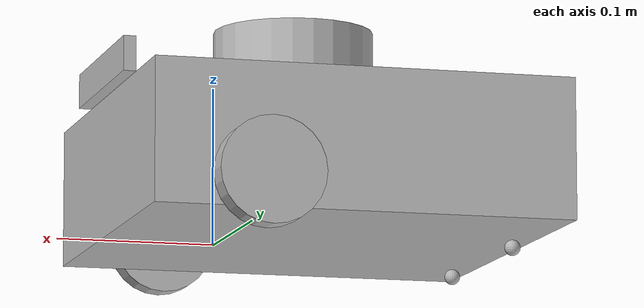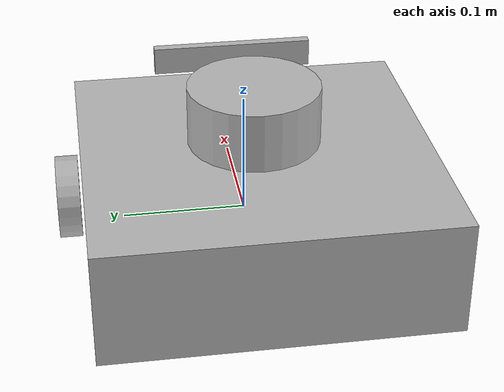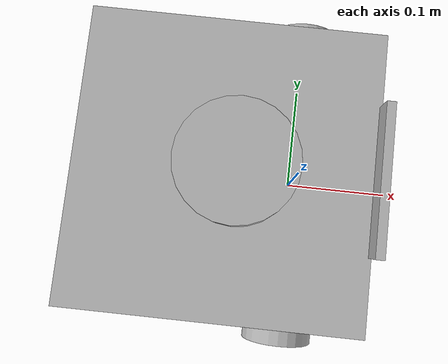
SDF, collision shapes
<?xml version="1.0"?>
<sdf version='1.6'>
  <model name="robot">

    <pose>0.0 0.0 0.0 0.0 0.0 0.0</pose>

    <link name="base_footprint"/>

    <link name="base_link">

      <inertial>
        <pose>-0.064 0 0.048 0 0 0</pose>
        <inertia>
          <ixx>0.001</ixx>
          <ixy>0.000</ixy>
          <ixz>0.000</ixz>
          <iyy>0.001</iyy>
          <iyz>0.000</iyz>
          <izz>0.001</izz>
        </inertia>
        <mass>1.0</mass>
      </inertial>

      <collision name="base_collision">
        <pose>-0.064 0 0.048 0 0 0</pose>
        <geometry>
          <box>
            <size>0.265 0.265 0.089</size>
          </box>
        </geometry>
      </collision>

      <visual name="base_visual">
        <pose>-0.064 0 0 0 0 0</pose>
        <geometry>
          <mesh>
            <uri>model://turtlebot3_waffle/meshes/waffle_base.dae</uri>
            <scale>0.001 0.001 0.001</scale>
          </mesh>
        </geometry>
      </visual>
    </link>

    <link name="imu_link">
      <sensor name="tb3_imu" type="imu">
        <always_on>true</always_on>
        <update_rate>200</update_rate>
        <imu>
          <angular_velocity>
            <x>
              <noise type="gaussian">
                <mean>0.0</mean>
                <stddev>2e-4</stddev>
              </noise>
            </x>
            <y>
              <noise type="gaussian">
                <mean>0.0</mean>
                <stddev>2e-4</stddev>
              </noise>
            </y>
            <z>
              <noise type="gaussian">
                <mean>0.0</mean>
                <stddev>2e-4</stddev>
              </noise>
            </z>
          </angular_velocity>
          <linear_acceleration>
            <x>
              <noise type="gaussian">
                <mean>0.0</mean>
                <stddev>1.7e-2</stddev>
              </noise>
            </x>
            <y>
              <noise type="gaussian">
                <mean>0.0</mean>
                <stddev>1.7e-2</stddev>
              </noise>
            </y>
            <z>
              <noise type="gaussian">
                <mean>0.0</mean>
                <stddev>1.7e-2</stddev>
              </noise>
            </z>
          </linear_acceleration>
        </imu>
        <plugin name="turtlebot3_imu" filename="libgazebo_ros_imu_sensor.so">
          <ros>
            <argument>--ros-args</argument>
            <argument>-r</argument>
            <argument>~/out:=imu</argument>
          </ros>
        </plugin>
      </sensor>
    </link>

    <link name="base_scan">
      <inertial>
        <pose>-0.052 0 0.111 0 0 0</pose>
        <inertia>
          <ixx>0.001</ixx>
          <ixy>0.000</ixy>
          <ixz>0.000</ixz>
          <iyy>0.001</iyy>
          <iyz>0.000</iyz>
          <izz>0.001</izz>
        </inertia>
        <mass>0.125</mass>
      </inertial>

      <collision name="lidar_sensor_collision">
        <pose>-0.052 0 0.111 0 0 0</pose>
        <geometry>
          <cylinder>
            <radius>0.0508</radius>
            <length>0.055</length>
          </cylinder>
        </geometry>
      </collision>

      <visual name="lidar_sensor_visual">
        <pose>-0.064 0 0.121 0 0 0</pose>
        <geometry>
          <mesh>
            <uri>model://turtlebot3_waffle/meshes/lds.dae</uri>
            <scale>0.001 0.001 0.001</scale>
          </mesh>
        </geometry>
      </visual>

      <sensor name="lidar_sensor" type="ray">
        <always_on>true</always_on>
        <visualize>true</visualize>
        <pose>-0.064 0 0.121 0 0 0</pose>
        <update_rate>5</update_rate>
        <ray>
          <scan>
            <horizontal>
              <samples>360</samples>
              <resolution>1.000000</resolution>
              <min_angle>-3.14</min_angle>
              <max_angle>3.14</max_angle>
            </horizontal>
          </scan>
          <range>
            <min>0.120000</min>
            <max>3.5</max>
            <resolution>0.015000</resolution>
          </range>
          <noise>
            <type>gaussian</type>
            <mean>0.0</mean>
            <stddev>0.01</stddev>
          </noise>
        </ray>
        <plugin name="turtlebot3_laserscan_realistic" filename="libgazebo_ros_ray_sensor.so">
          <ros>
              <argument>--ros-args</argument>
              <argument>-r </argument>
              <argument>~/out:=scan</argument>
          </ros>
          <output_type>sensor_msgs/LaserScan</output_type>
          <frame_name>base_scan</frame_name>
        </plugin>
      </sensor>

      <sensor name="lidar_sensor_gt" type="ray">
        <always_on>true</always_on>
        <visualize>true</visualize>
        <pose>-0.064 0 0.121 0 0 0</pose>
        <update_rate>5</update_rate>
        <ray>
          <scan>
            <horizontal>
              <samples>360</samples>
              <resolution>1.000000</resolution>
              <min_angle>-3.14</min_angle>
              <max_angle>3.14</max_angle>
            </horizontal>
          </scan>
          <range>
            <min>0.120000</min>
            <max>60.0</max>
            <resolution>0.015000</resolution>
          </range>
        </ray>
        <plugin name="turtlebot3_laserscan_gt" filename="libgazebo_ros_ray_sensor.so">
          <ros>
              <argument>--ros-args</argument>
              <argument>-r </argument>
              <argument>~/out:=scan_gt</argument>
          </ros>
          <output_type>sensor_msgs/LaserScan</output_type>
          <frame_name>base_scan_gt</frame_name>
        </plugin>
      </sensor>

    </link>

    <link name="wheel_left_link">

      <inertial>
        <pose>0.0 0.144 0.023 -1.57 0 0</pose>
        <inertia>
          <ixx>0.001</ixx>
          <ixy>0.000</ixy>
          <ixz>0.000</ixz>
          <iyy>0.001</iyy>
          <iyz>0.000</iyz>
          <izz>0.001</izz>
        </inertia>
        <mass>0.1</mass>
      </inertial>

      <collision name="wheel_left_collision">
        <pose>0.0 0.144 0.023 -1.57 0 0</pose>
        <geometry>
          <cylinder>
            <radius>0.033</radius>
            <length>0.018</length>
          </cylinder>
        </geometry>
        <surface>
          <!-- This friction parameter doesn't contain reliable data!! -->
          <friction>
            <ode>
              <mu>100000.0</mu>
              <mu2>100000.0</mu2>
              <fdir1>0 0 0</fdir1>
              <slip1>0.0</slip1>
              <slip2>0.0</slip2>
            </ode>
          </friction>
          <contact>
            <ode>
              <soft_cfm>0</soft_cfm>
              <soft_erp>0.2</soft_erp>
              <kp>1e+5</kp>
              <kd>1</kd>
              <max_vel>0.01</max_vel>
              <min_depth>0.001</min_depth>
            </ode>
          </contact>
        </surface>
      </collision>

      <visual name="wheel_left_visual">
        <pose>0.0 0.144 0.023 0 0 0</pose>
        <geometry>
          <mesh>
            <uri>model://turtlebot3_waffle/meshes/left_tire.dae</uri>
            <scale>0.001 0.001 0.001</scale>
          </mesh>
        </geometry>
      </visual>
    </link>

    <link name="wheel_right_link">

      <inertial>
        <pose>0.0 -0.144 0.023 -1.57 0 0</pose>
        <inertia>
          <ixx>0.001</ixx>
          <ixy>0.000</ixy>
          <ixz>0.000</ixz>
          <iyy>0.001</iyy>
          <iyz>0.000</iyz>
          <izz>0.001</izz>
        </inertia>
        <mass>0.1</mass>
      </inertial>

      <collision name="wheel_right_collision">
        <pose>0.0 -0.144 0.023 -1.57 0 0</pose>
        <geometry>
          <cylinder>
            <radius>0.033</radius>
            <length>0.018</length>
          </cylinder>
        </geometry>
        <surface>
          <!-- This friction parameter doesn't contain reliable data!! -->
          <friction>
            <ode>
              <mu>100000.0</mu>
              <mu2>100000.0</mu2>
              <fdir1>0 0 0</fdir1>
              <slip1>0.0</slip1>
              <slip2>0.0</slip2>
            </ode>
          </friction>
          <contact>
            <ode>
              <soft_cfm>0</soft_cfm>
              <soft_erp>0.2</soft_erp>
              <kp>1e+5</kp>
              <kd>1</kd>
              <max_vel>0.01</max_vel>
              <min_depth>0.001</min_depth>
            </ode>
          </contact>
        </surface>
      </collision>

      <visual name="wheel_right_visual">
        <pose>0.0 -0.144 0.023 0 0 0</pose>
        <geometry>
          <mesh>
            <uri>model://turtlebot3_waffle/meshes/right_tire.dae</uri>
            <scale>0.001 0.001 0.001</scale>
          </mesh>
        </geometry>
      </visual>
    </link>

    <link name='caster_back_right_link'>
      <pose>-0.177 -0.064 -0.004 0 0 0</pose>
      <inertial>
        <mass>0.001</mass>
        <inertia>
          <ixx>0.00001</ixx>
          <ixy>0.000</ixy>
          <ixz>0.000</ixz>
          <iyy>0.00001</iyy>
          <iyz>0.000</iyz>
          <izz>0.00001</izz>
        </inertia>
      </inertial>
      <collision name='collision'>
        <geometry>
          <sphere>
            <radius>0.005000</radius>
          </sphere>
        </geometry>
        <surface>
          <contact>
            <ode>
              <soft_cfm>0</soft_cfm>
              <soft_erp>0.2</soft_erp>
              <kp>1e+5</kp>
              <kd>1</kd>
              <max_vel>0.01</max_vel>
              <min_depth>0.001</min_depth>
            </ode>
          </contact>
        </surface>
      </collision>
    </link>

    <link name='caster_back_left_link'>
      <pose>-0.177 0.064 -0.004 0 0 0</pose>
      <inertial>
        <mass>0.001</mass>
        <inertia>
          <ixx>0.00001</ixx>
          <ixy>0.000</ixy>
          <ixz>0.000</ixz>
          <iyy>0.00001</iyy>
          <iyz>0.000</iyz>
          <izz>0.00001</izz>
        </inertia>
      </inertial>
      <collision name='collision'>
        <geometry>
          <sphere>
            <radius>0.005000</radius>
          </sphere>
        </geometry>
        <surface>
          <contact>
            <ode>
              <soft_cfm>0</soft_cfm>
              <soft_erp>0.2</soft_erp>
              <kp>1e+5</kp>
              <kd>1</kd>
              <max_vel>0.01</max_vel>
              <min_depth>0.001</min_depth>
            </ode>
          </contact>
        </surface>
      </collision>
    </link>

    <link name="camera_link"/>

    <link name="camera_rgb_frame">
      <inertial>
        <pose>0.069 -0.047 0.107 0 0 0</pose>
        <inertia>
          <ixx>0.001</ixx>
          <ixy>0.000</ixy>
          <ixz>0.000</ixz>
          <iyy>0.001</iyy>
          <iyz>0.000</iyz>
          <izz>0.001</izz>
        </inertia>
        <mass>0.035</mass>
      </inertial>

      <collision name="collision">
        <pose>0 0.047 0 0 0 0</pose>
        <geometry>
          <box>
            <size>0.008 0.130 0.022</size>
          </box>
        </geometry>
      </collision>
      <pose>0.069 -0.047 0.107 0 0 0</pose>
      <sensor name="camera" type="camera">
        <always_on>true</always_on>
        <visualize>true</visualize>
        <update_rate>30</update_rate>
        <camera name="intel_realsense_r200">
          <horizontal_fov>1.02974</horizontal_fov>
          <image>
            <width>1920</width>
            <height>1080</height>
            <format>R8G8B8</format>
          </image>
          <clip>
            <near>0.02</near>
            <far>300</far>
          </clip>
          <noise>
            <type>gaussian</type>
            <mean>0.0</mean>
            <stddev>0.007</stddev>
          </noise>
        </camera>
          <plugin name="camera_driver" filename="libgazebo_ros_camera.so">
            <ros>
            </ros>
          </plugin>
      </sensor>
    </link>

    <joint name="base_joint" type="fixed">
      <parent>base_footprint</parent>
      <child>base_link</child>
      <pose>0.0 0.0 0.010 0 0 0</pose>
    </joint>

    <joint name="wheel_left_joint" type="revolute">
      <parent>base_link</parent>
      <child>wheel_left_link</child>
      <pose>0.0 0.144 0.023 -1.57 0 0</pose>
      <axis>
        <xyz>0 0 1</xyz>
      </axis>
    </joint>

    <joint name="wheel_right_joint" type="revolute">
      <parent>base_link</parent>
      <child>wheel_right_link</child>
      <pose>0.0 -0.144 0.023 -1.57 0 0</pose>
      <axis>
        <xyz>0 0 1</xyz>
      </axis>
    </joint>

    <joint name='caster_back_right_joint' type='ball'>
      <parent>base_link</parent>
      <child>caster_back_right_link</child>
    </joint>

    <joint name='caster_back_left_joint' type='ball'>
      <parent>base_link</parent>
      <child>caster_back_left_link</child>
    </joint>

    <joint name="lidar_joint" type="fixed">
      <parent>base_link</parent>
      <child>base_scan</child>
      <pose>-0.064 0 0.121 0 0 0</pose>
      <axis>
        <xyz>0 0 1</xyz>
      </axis>
    </joint>

    <joint name="camera_joint" type="fixed">
      <parent>base_link</parent>
      <child>camera_link</child>
      <pose>0.064 -0.065 0.094 0 0 0</pose>
      <axis>
        <xyz>0 0 1</xyz>
      </axis>
    </joint>

    <joint name="camera_rgb_joint" type="fixed">
      <parent>camera_link</parent>
      <child>camera_rgb_frame</child>
      <pose>0.005 0.018 0.013 0 0 0</pose>
      <axis>
        <xyz>0 0 1</xyz>
      </axis>
    </joint>

    <plugin name="p3d_base_footprint" filename="libgazebo_ros_p3d.so">
      <ros>
        <namespace>/ground_truth/base_footprint</namespace>
      </ros>
      <always_on>true</always_on>
      <update_rate>20.0</update_rate>
      <body_name>base_footprint</body_name>
      <frame_name>world</frame_name>
      <xyz_offset>0 0 0</xyz_offset>
      <rpy_offset>0 0 0</rpy_offset>
    </plugin>

    <plugin name="turtlebot3_diff_drive" filename="libgazebo_ros_diff_drive.so">

      <ros>
      </ros>

      <update_rate>30</update_rate>

      <!-- wheels -->
      <left_joint>wheel_left_joint</left_joint>
      <right_joint>wheel_right_joint</right_joint>

      <!-- kinematics -->
      <wheel_separation>0.287</wheel_separation>
      <wheel_diameter>0.066</wheel_diameter>

      <!-- limits -->
      <max_wheel_torque>20</max_wheel_torque>
      <max_wheel_acceleration>1.0</max_wheel_acceleration>

      <command_topic>cmd_vel</command_topic>

      <!-- output -->
      <publish_odom>true</publish_odom>
      <publish_odom_tf>true</publish_odom_tf>
      <publish_wheel_tf>false</publish_wheel_tf>

      <odometry_topic>odom</odometry_topic>
      <odometry_frame>odom</odometry_frame>
      <robot_base_frame>base_footprint</robot_base_frame>

      <publish_ground_truth_tf>true</publish_ground_truth_tf>
      <ground_truth_parent_frame>odom_gt</ground_truth_parent_frame>
      <ground_truth_robot_base_frame>base_footprint_gt</ground_truth_robot_base_frame>

      <odometry_source>2</odometry_source>
      <alpha1>0.07</alpha1>
      <alpha2>0.07</alpha2>
      <alpha3>0.02</alpha3>
      <alpha4>0.02</alpha4>

    </plugin>

    <plugin name="turtlebot3_joint_state" filename="libgazebo_ros_joint_state_publisher.so">
      <ros>
          <argument>--ros-args</argument>
          <argument>-r </argument>
          <argument>~/out:=joint_states</argument>
      </ros>
      <update_rate>30</update_rate>
      <joint_name>wheel_left_joint</joint_name>
      <joint_name>wheel_right_joint</joint_name>
    </plugin>

  </model>
</sdf>
